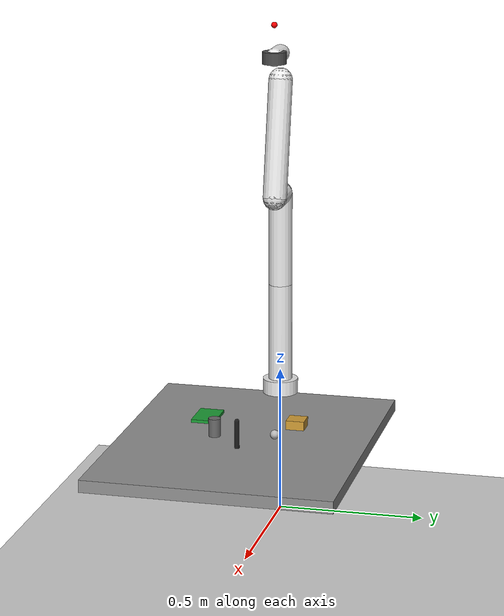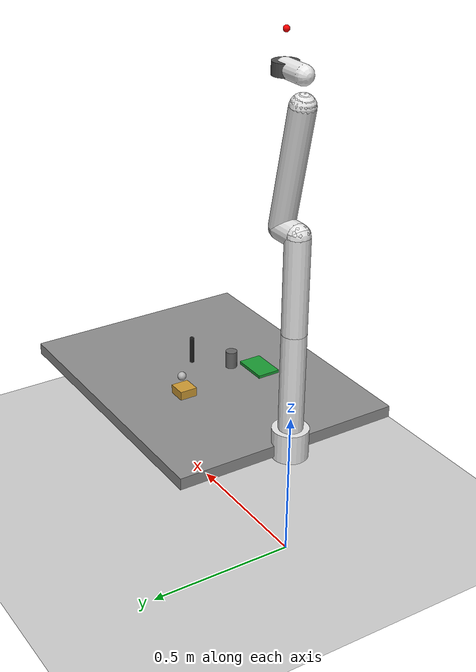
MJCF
<!--
  S6 E-Waste Disassembly scene for PSL-Bench.
  Panda arm + work surface + 5 different freejoint objects representing e-waste components.
  Frame convention: z-up, SI units (metres, radians, kg).
-->
<mujoco model="s6_ewaste_disassembly">
  <option timestep="0.002" gravity="0 0 -9.81"/>
  <compiler angle="radian"/>

  <default>
    <joint damping="1.0" armature="0.1"/>
    <geom condim="4" friction="1 0.5 0.01"/>
  </default>

  <worldbody>
    <!-- Ground plane -->
    <geom name="floor" type="plane" size="2 2 0.1" rgba="0.8 0.8 0.8 1"/>

    <!-- Work surface -->
    <body name="work_surface" pos="0.5 0 0.4">
      <geom name="worktop" type="box" size="0.5 0.4 0.02" rgba="0.55 0.55 0.55 1" mass="15"/>
    </body>

    <!-- Panda arm base -->
    <body name="panda_link0" pos="0 0 0.42">
      <geom name="link0_geom" type="cylinder" size="0.06 0.05" rgba="0.9 0.9 0.9 1" mass="2.0"/>
      <body name="panda_link1" pos="0 0 0.05">
        <joint name="joint_0" type="hinge" axis="0 0 1" range="-2.8973 2.8973" damping="10"/>
        <geom name="link1_geom" type="capsule" fromto="0 0 0 0 0 0.333" size="0.04" rgba="0.9 0.9 0.9 1" mass="2.0"/>
        <body name="panda_link2" pos="0 0 0.333">
          <joint name="joint_1" type="hinge" axis="0 1 0" range="-1.7628 1.7628" damping="10"/>
          <geom name="link2_geom" type="capsule" fromto="0 0 0 0 0 0.316" size="0.04" rgba="0.9 0.9 0.9 1" mass="2.0"/>
          <body name="panda_link3" pos="0 0 0.316">
            <joint name="joint_2" type="hinge" axis="0 0 1" range="-2.8973 2.8973" damping="10"/>
            <geom name="link3_geom" type="capsule" fromto="0 0 0 0.0825 0 0" size="0.04" rgba="0.9 0.9 0.9 1" mass="2.0"/>
            <body name="panda_link4" pos="0.0825 0 0">
              <joint name="joint_3" type="hinge" axis="0 -1 0" range="-3.0718 -0.0698" damping="10"/>
              <geom name="link4_geom" type="capsule" fromto="0 0 0 -0.0825 0 0.384" size="0.04" rgba="0.9 0.9 0.9 1" mass="2.0"/>
              <body name="panda_link5" pos="-0.0825 0 0.384">
                <joint name="joint_4" type="hinge" axis="0 0 1" range="-2.8973 2.8973" damping="10"/>
                <geom name="link5_geom" type="sphere" size="0.04" rgba="0.9 0.9 0.9 1" mass="1.0"/>
                <body name="panda_link6" pos="0 0 0.088">
                  <joint name="joint_5" type="hinge" axis="0 1 0" range="-0.0175 3.7525" damping="5"/>
                  <geom name="link6_geom" type="capsule" fromto="0 0 0 0.088 0 0" size="0.03" rgba="0.9 0.9 0.9 1" mass="1.0"/>
                  <body name="panda_link7" pos="0.088 0 0">
                    <joint name="joint_6" type="hinge" axis="0 0 1" range="-2.8973 2.8973" damping="2"/>
                    <geom name="link7_geom" type="cylinder" size="0.04 0.02" rgba="0.3 0.3 0.3 1" mass="0.5"/>
                    <site name="ee_site" pos="0 0 0.107" size="0.01" rgba="1 0 0 1"/>
                  </body>
                </body>
              </body>
            </body>
          </body>
        </body>
      </body>
    </body>

    <!-- Component 1: PCB board (box) -->
    <body name="comp_pcb" pos="0.4 -0.15 0.45">
      <freejoint name="pcb_free"/>
      <geom name="pcb_geom" type="box" size="0.06 0.04 0.005" rgba="0.1 0.6 0.2 1" mass="0.08"/>
    </body>

    <!-- Component 2: motor (cylinder) -->
    <body name="comp_motor" pos="0.5 -0.1 0.45">
      <freejoint name="motor_free"/>
      <geom name="motor_geom" type="cylinder" size="0.02 0.03" rgba="0.4 0.4 0.4 1" mass="0.15"/>
    </body>

    <!-- Component 3: bearing (sphere) -->
    <body name="comp_bearing" pos="0.5 0.1 0.44">
      <freejoint name="bearing_free"/>
      <geom name="bearing_geom" type="sphere" size="0.015" rgba="0.7 0.7 0.7 1" mass="0.05"/>
    </body>

    <!-- Component 4: cable bundle (capsule) -->
    <body name="comp_cable" pos="0.6 0 0.45">
      <freejoint name="cable_free"/>
      <geom name="cable_geom" type="capsule" size="0.008 0.06" rgba="0.1 0.1 0.1 1" mass="0.03"/>
    </body>

    <!-- Component 5: heat sink (box) -->
    <body name="comp_heatsink" pos="0.4 0.15 0.45">
      <freejoint name="heatsink_free"/>
      <geom name="heatsink_geom" type="box" size="0.03 0.03 0.015" rgba="0.8 0.6 0.2 1" mass="0.12"/>
    </body>
  </worldbody>

  <actuator>
    <position name="act_joint_0" joint="joint_0" kp="1000"/>
    <position name="act_joint_1" joint="joint_1" kp="1000"/>
    <position name="act_joint_2" joint="joint_2" kp="1000"/>
    <position name="act_joint_3" joint="joint_3" kp="1000"/>
    <position name="act_joint_4" joint="joint_4" kp="1000"/>
    <position name="act_joint_5" joint="joint_5" kp="1000"/>
    <position name="act_joint_6" joint="joint_6" kp="1000"/>
  </actuator>

  <sensor>
    <jointpos name="jpos_0" joint="joint_0"/>
    <jointpos name="jpos_1" joint="joint_1"/>
    <jointpos name="jpos_2" joint="joint_2"/>
    <jointpos name="jpos_3" joint="joint_3"/>
    <jointpos name="jpos_4" joint="joint_4"/>
    <jointpos name="jpos_5" joint="joint_5"/>
    <jointpos name="jpos_6" joint="joint_6"/>
    <jointvel name="jvel_0" joint="joint_0"/>
    <jointvel name="jvel_1" joint="joint_1"/>
    <jointvel name="jvel_2" joint="joint_2"/>
    <jointvel name="jvel_3" joint="joint_3"/>
    <jointvel name="jvel_4" joint="joint_4"/>
    <jointvel name="jvel_5" joint="joint_5"/>
    <jointvel name="jvel_6" joint="joint_6"/>
    <framepos name="ee_pos" objtype="site" objname="ee_site"/>
    <framequat name="ee_quat" objtype="site" objname="ee_site"/>
  </sensor>
</mujoco>
